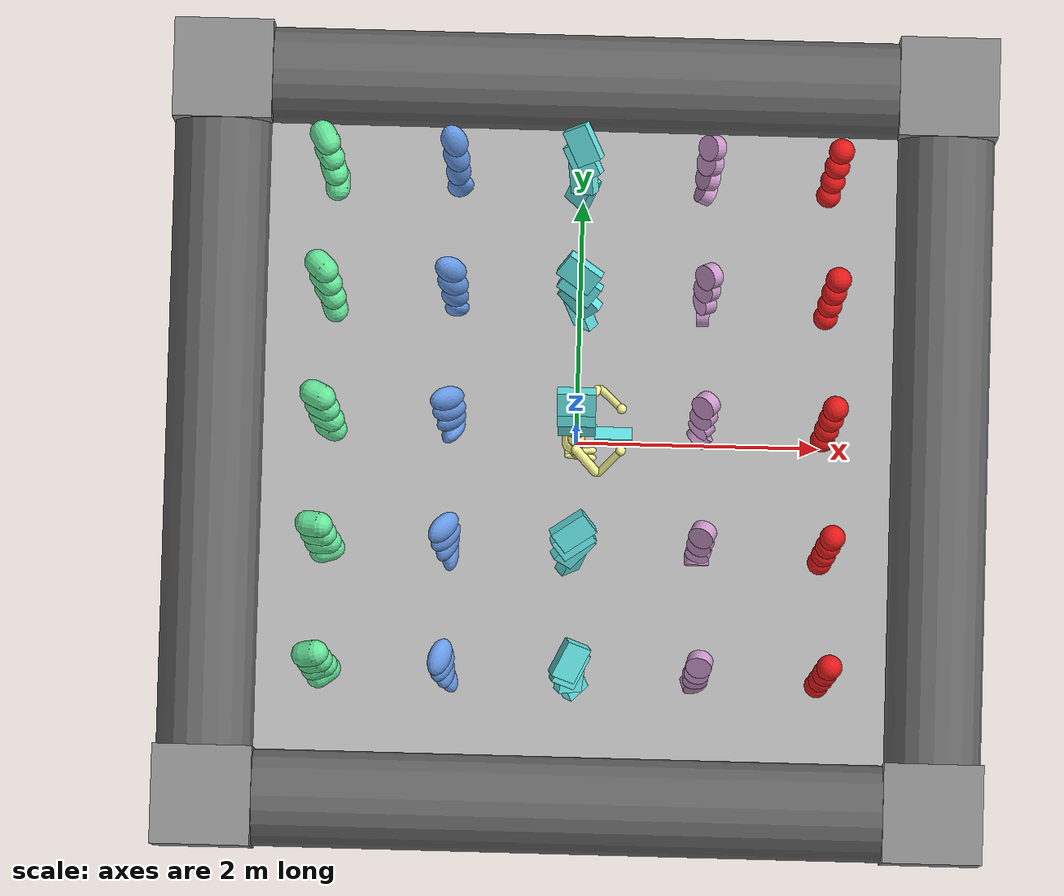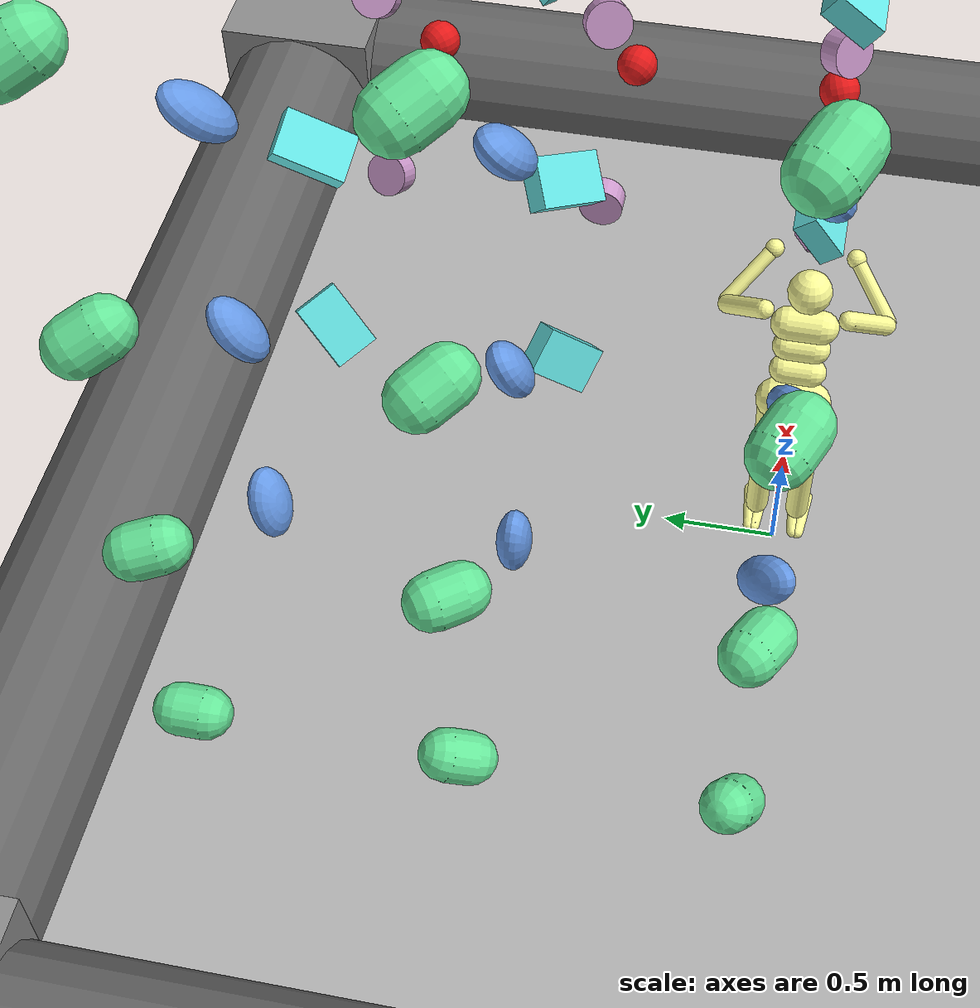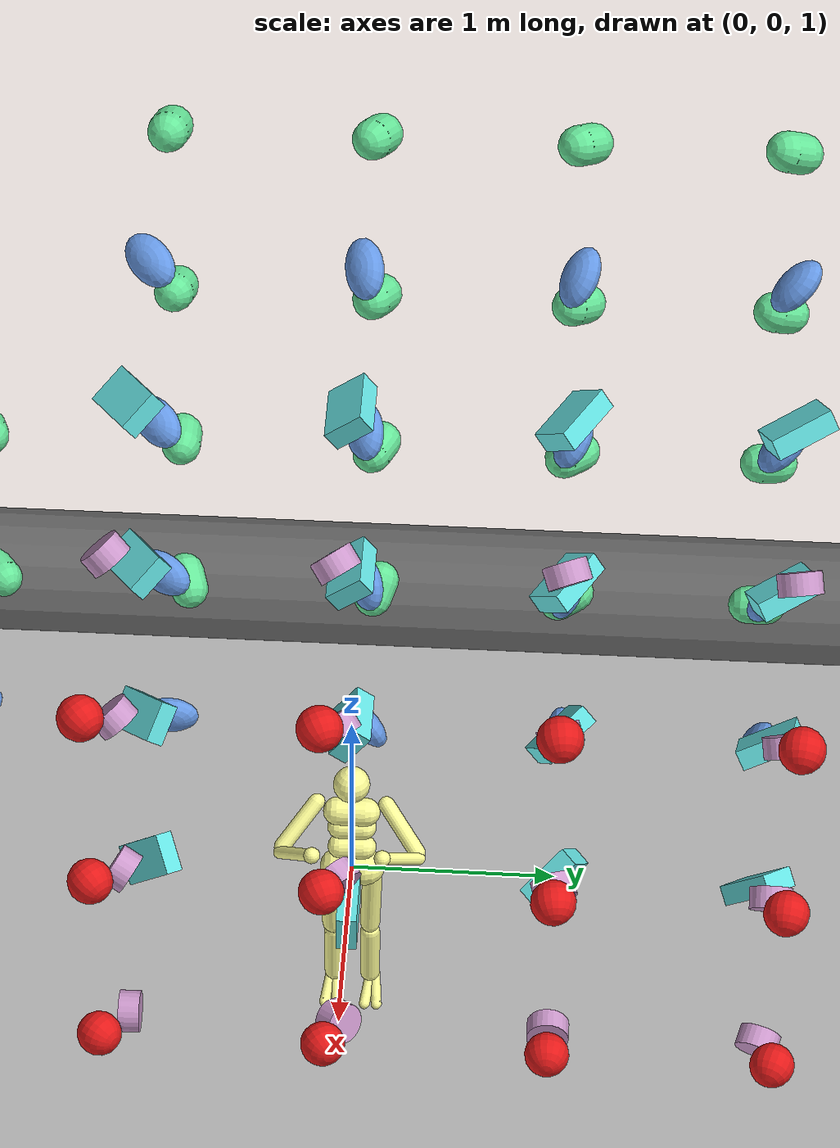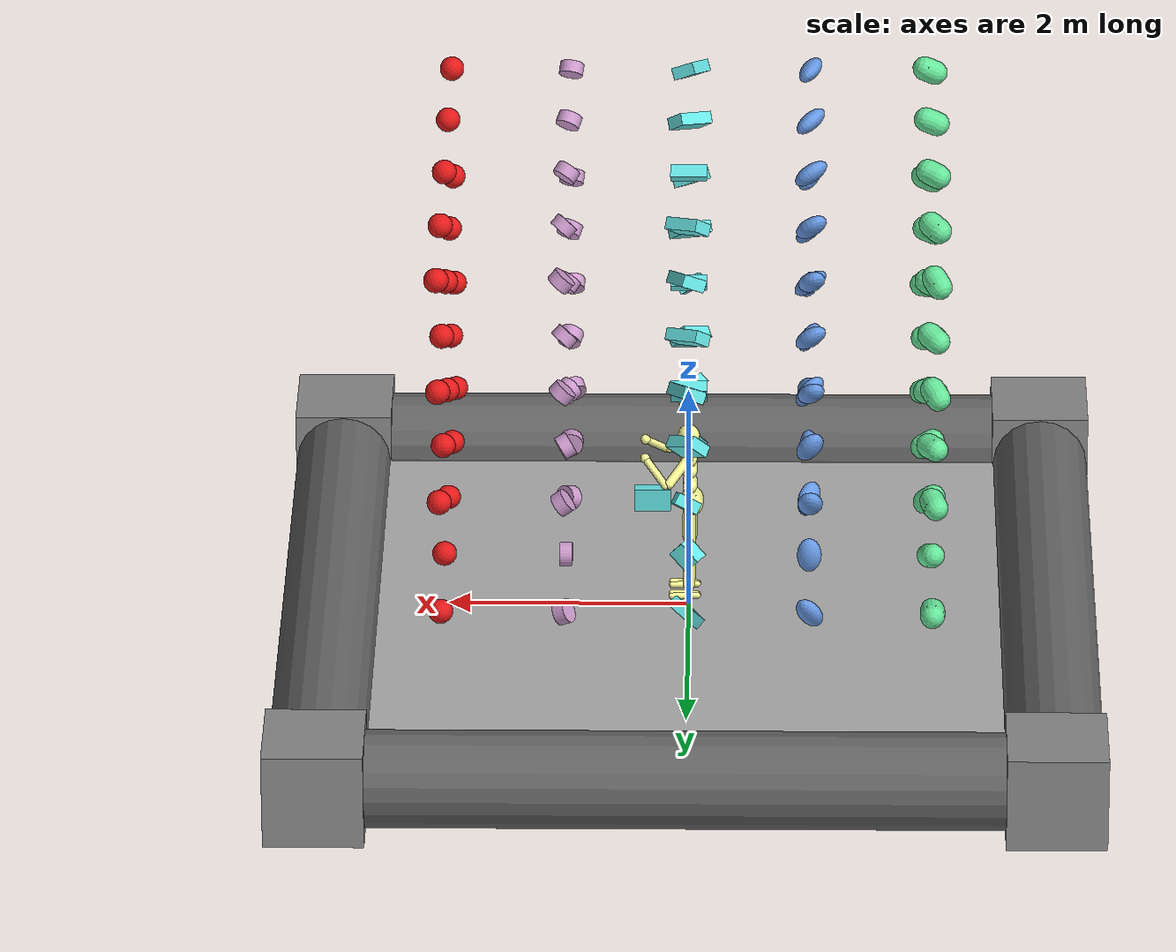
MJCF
<mujoco model="Humanoid and 100 objects">
    <compiler angle="degree"/>

    <option timestep="0.003" iterations="50" solver="Newton" jacobian="sparse" cone="elliptic" tolerance="1e-10"/>

    <size njmax="5000" nconmax="2000" nstack="5000000"/>

    <default>
        <geom solimp=".9 .9 .01"/>

        <default class="object1">
            <geom type="capsule" material="geom" rgba=".4 .9 .6 1" size="0.1 0.05"/>
        </default>

        <default class="object2">
            <geom type="ellipsoid" material="geom" rgba=".4 .6 .9 1" size="0.15 0.1 0.07"/>
        </default>

        <default class="object3">
            <geom type="box" material="geom" rgba=".4 .9 .9 1" size="0.15 0.1 0.05"/>
        </default>

        <default class="object4">
            <geom type="cylinder" material="geom" rgba=".8 .6 .8 1" size="0.1 0.05" condim="4" friction="1 .01 .01"/>
        </default>

        <default class="object5">
            <geom type="sphere" material="geom" rgba=".9 .1 .1 1" size="0.1"/>
        </default>

        <default class="humanoid">
            <geom rgba="1.2 1.2 0.6 1" material="geom"/>
            <joint damping="1" limited="true"/>
        </default>

        <default class="border">
            <geom type="capsule" size="0.4" rgba=".4 .4 .4 1"/>
        </default>

        <default class="borderpost">
            <geom type="box" size="0.41 0.41 0.41" rgba=".55 .55 .55 1"/>
        </default>

 	<default class="juggler">
        	<joint limited='true' damping='1' armature='0'/>
        	<geom contype='1' conaffinity='1' condim='3' rgba='0.8 0.6 .4 1'
        		margin="0.001" solref=".02 1" solimp=".8 .8 .01" material="geom" type='capsule'/>
        	<motor ctrlrange='-1 1'  ctrllimited='true'/>
			<default class="passive">
			 	<geom contype='0' conaffinity='0' rgba='.5 .5 1 1' type='capsule'  size='.005 .5' />
			</default>
		<default class="wall">
			 	<geom contype='1' conaffinity='1' rgba='1 0 0 1' type='capsule'/>
		</default>
    	</default>

    </default>

    <asset>
        <texture type="skybox" builtin="gradient" width="128" height="128" rgb1=".4 .6 .8" rgb2="0 0 0"/>
        <texture name="texgeom" type="cube" builtin="flat" mark="cross" width="128" height="128"
            rgb1="0.6 0.6 0.6" rgb2="0.6 0.6 0.6" markrgb="1 1 1"/>
        <texture name="texplane" type="2d" builtin="checker" rgb1=".4 .4 .4" rgb2=".6 .6 .6"
            width="512" height="512"/>
        <material name='geom' texture="texgeom" texuniform="true"/>
        <material name='MatPlane' reflectance='0.3' texture="texplane" texrepeat="1 1" texuniform="true"/>
    </asset>

    <visual>
        <quality shadowsize="4096" offsamples="8"/>
        <map znear="0.1" force="0.05"/>
    </visual>

    <statistic extent="4"/>

    <worldbody>
        <light directional="true" diffuse=".8 .8 .8" pos="0 0 10" dir="0 0 -10"/>

        <geom pos="0 0 0" type="plane" size="3 3 .5" rgba=".7 .7 .7 1" material="MatPlane"/>

        <geom class="border" fromto="-3 3 0 3 3 0"  />
        <geom class="border" fromto="-3 -3 0 3 -3 0"  />
        <geom class="border" fromto="3 3 0 3 -3 0"  />
        <geom class="border" fromto="-3 3 0 -3 -3 0"  />
        <geom class="borderpost" pos="3 3 0"/>
        <geom class="borderpost" pos="-3 3 0"/>
        <geom class="borderpost" pos="3 -3 0"/>
        <geom class="borderpost" pos="-3 -3 0"/>

        <body name='torso' pos='0 0 1.4' childclass="humanoid">
            <freejoint name="root"/>
            <geom name='torso1' type='capsule' fromto='0 -.07 0 0 .07 0'  size='0.07'/>
            <geom name='head' type='sphere' pos='0 0 .19' size='.09'/>
            <geom name='uwaist' type='capsule' fromto='-.01 -.06 -.12 -.01 .06 -.12' size='0.06'/>
            <body name='lwaist' pos='-.01 0 -0.260' quat='1.000 0 -0.002 0' >
                <geom name='lwaist' type='capsule' fromto='0 -.06 0 0 .06 0'  size='0.06' />
                <joint name='abdomen_z' type='hinge' pos='0 0 0.065' axis='0 0 1' range='-45 45' damping='5' stiffness='20' armature='0.02' />
                <joint name='abdomen_y' type='hinge' pos='0 0 0.065' axis='0 1 0' range='-75 30' damping='5' stiffness='10' armature='0.02' />
                <body name='pelvis' pos='0 0 -0.165' quat='1.000 0 -0.002 0' >
                    <joint name='abdomen_x' type='hinge' pos='0 0 0.1' axis='1 0 0' range='-35 35' damping='5' stiffness='10' armature='0.02' />
                    <geom name='butt' type='capsule' fromto='-.02 -.07 0 -.02 .07 0'  size='0.09' />
                    <body name='right_thigh' pos='0 -0.1 -0.04' >
                        <joint name='right_hip_x' type='hinge' pos='0 0 0' axis='1 0 0' range='-25 5'   damping='5' stiffness='10' armature='0.01' />
                        <joint name='right_hip_z' type='hinge' pos='0 0 0' axis='0 0 1' range='-60 35'  damping='5' stiffness='10' armature='0.01' />
                        <joint name='right_hip_y' type='hinge' pos='0 0 0' axis='0 1 0' range='-120 20' damping='5' stiffness='20' armature='0.01' />
                        <geom name='right_thigh1' type='capsule' fromto='0 0 0 0 0.01 -.34'  size='0.06' />
                        <body name='right_shin' pos='0 0.01 -0.403' >
                            <joint name='right_knee' type='hinge' pos='0 0 .02' axis='0 -1 0' range='-160 -2' stiffness='1' armature='0.0060' />
                            <geom name='right_shin1' type='capsule' fromto='0 0 0 0 0 -.3'   size='0.049' />
                            <body name='right_foot' pos='0 0 -.39' >
                                <joint name='right_ankle_y' type='hinge' pos='0 0 0.08' axis='0 1 0'   range='-50 50' stiffness='4' armature='0.0008' />
                                <joint name='right_ankle_x' type='hinge' pos='0 0 0.04' axis='1 0 0.5' range='-50 50' stiffness='1'  armature='0.0006' />
                                <geom name='right_foot_cap1' type='capsule' fromto='-.07 -0.02 0 0.14 -0.04 0'  size='0.027' />
                                <geom name='right_foot_cap2' type='capsule' fromto='-.07 0 0 0.14  0.02 0'  size='0.027' />
                            </body>
                        </body>
                    </body>
                    <body name='left_thigh' pos='0 0.1 -0.04' >
                        <joint name='left_hip_x' type='hinge' pos='0 0 0' axis='-1 0 0' range='-25 5'  damping='5' stiffness='10' armature='0.01' />
                        <joint name='left_hip_z' type='hinge' pos='0 0 0' axis='0 0 -1' range='-60 35' damping='5' stiffness='10' armature='0.01' />
                        <joint name='left_hip_y' type='hinge' pos='0 0 0' axis='0 1 0' range='-120 20' damping='5' stiffness='20' armature='0.01' />
                        <geom name='left_thigh1' type='capsule' fromto='0 0 0 0 -0.01 -.34'  size='0.049' />
                        <body name='left_shin' pos='0 -0.01 -0.403' >
                            <joint name='left_knee' type='hinge' pos='0 0 .02' axis='0 -1 0' range='-160 -2' stiffness='1' armature='0.0060' />
                            <geom name='left_shin1' type='capsule' fromto='0 0 0 0 0 -.3'   size='0.049' />
                            <body name='left_foot' pos='0 0 -.39' >
                                <joint name='left_ankle_y' type='hinge' pos='0 0 0.08' axis='0 1 0'   range='-50 50'  stiffness='4' armature='0.0008' />
                                <joint name='left_ankle_x' type='hinge' pos='0 0 0.04' axis='1 0 0.5' range='-50 50'  stiffness='1'  armature='0.0006' />
                                <geom name='left_foot_cap1' type='capsule' fromto='-.07 0.02 0 0.14 0.04 0'  size='0.027' />
                                <geom name='left_foot_cap2' type='capsule' fromto='-.07 0 0 0.14  -0.02 0'  size='0.027' />
                            </body>
                        </body>
                    </body>
                </body>
            </body>
            <body name='right_upper_arm' pos='0 -0.17 0.06' >
                <joint name='right_shoulder1' type='hinge' pos='0 0 0' axis='2 1 1'  range='-85 60' stiffness='1' armature='0.0068' />
                <joint name='right_shoulder2' type='hinge' pos='0 0 0' axis='0 -1 1' range='-85 60' stiffness='1'  armature='0.0051' />
                <geom name='right_uarm1' type='capsule' fromto='0 0 0 .16 -.16 -.16'  size='0.04 0.16' />
                <body name='right_lower_arm' pos='.18 -.18 -.18' >
                    <joint name='right_elbow' type='hinge' pos='0 0 0' axis='0 -1 1' range='-90 50'  stiffness='0' armature='0.0028' />
                    <geom name='right_larm' type='capsule' fromto='0.01 0.01 0.01 .17 .17 .17'  size='0.031' />
                    <geom name='right_hand' type='sphere' pos='.18 .18 .18'  size='0.04'/>
                </body>
            </body>
            <body name='left_upper_arm' pos='0 0.17 0.06' >
                <joint name='left_shoulder1' type='hinge' pos='0 0 0' axis='2 -1 1' range='-60 85' stiffness='1' armature='0.0068' />
                <joint name='left_shoulder2' type='hinge' pos='0 0 0' axis='0 1 1' range='-60 85'  stiffness='1' armature='0.0051' />
                <geom name='left_uarm1' type='capsule' fromto='0 0 0 .16 .16 -.16'  size='0.04 0.16' />
                <body name='left_lower_arm' pos='.18 .18 -.18' >
                    <joint name='left_elbow' type='hinge' pos='0 0 0' axis='0 -1 -1' range='-90 50' stiffness='0' armature='0.0028' />
                    <geom name='left_larm' type='capsule' fromto='0.01 -0.01 0.01 .17 -.17 .17'  size='0.031' />
                    <geom name='left_hand' type='sphere' pos='.18 -.18 .18'  size='0.04'/>
                </body>
            </body>
        </body>

        <body pos="-2 -2 1" quat="-0.632456 -0.632456 0.316228 0.316228">
            <freejoint/>
            <geom class="object1"/>
        </body>
        <body pos="-2 -2 2" quat="-0.5547 -0.5547 0.5547 0.27735">
            <freejoint/>
            <geom class="object1"/>
        </body>
        <body pos="-2 -2 3" quat="-0.471405 -0.471405 0.707107 0.235702">
            <freejoint/>
            <geom class="object1"/>
        </body>
        <body pos="-2 -2 4" quat="-0.471405 -0.471405 0.707107 0.235702">
            <freejoint/>
            <geom class="object1"/>
        </body>

        <body pos="-2 -1 1" quat="-0.755929 -0.377964 0.377964 0.377964">
            <freejoint/>
            <geom class="object1"/>
        </body>
        <body pos="-2 -1 2" quat="-0.632456 -0.316228 0.632456 0.316228">
            <freejoint/>
            <geom class="object1"/>
        </body>
        <body pos="-2 -1 3" quat="-0.516398 -0.258199 0.774597 0.258199">
            <freejoint/>
            <geom class="object1"/>
        </body>
        <body pos="-2 -1 4" quat="-0.516398 -0.258199 0.774597 0.258199">
            <freejoint/>
            <geom class="object1"/>
        </body>

        <body pos="-2 0 1" quat="-0.816497 0 0.408248 0.408248">
            <freejoint/>
            <geom class="object1"/>
        </body>
        <body pos="-2 0 2" quat="-0.666667 0 0.666667 0.333333">
            <freejoint/>
            <geom class="object1"/>
        </body>
        <body pos="-2 0 3" quat="-0.534522 0 0.801784 0.267261">
            <freejoint/>
            <geom class="object1"/>
        </body>
        <body pos="-2 0 4" quat="-0.534522 0 0.801784 0.267261">
            <freejoint/>
            <geom class="object1"/>
        </body>

        <body pos="-2 1 1" quat="-0.755929 0.377964 0.377964 0.377964">
            <freejoint/>
            <geom class="object1"/>
        </body>
        <body pos="-2 1 2" quat="-0.632456 0.316228 0.632456 0.316228">
            <freejoint/>
            <geom class="object1"/>
        </body>
        <body pos="-2 1 3" quat="-0.516398 0.258199 0.774597 0.258199">
            <freejoint/>
            <geom class="object1"/>
        </body>
        <body pos="-2 1 4" quat="-0.516398 0.258199 0.774597 0.258199">
            <freejoint/>
            <geom class="object1"/>
        </body>

        <body pos="-2 2 1" quat="-0.632456 0.632456 0.316228 0.316228">
            <freejoint/>
            <geom class="object1"/>
        </body>
        <body pos="-2 2 2" quat="-0.5547 0.5547 0.5547 0.27735">
            <freejoint/>
            <geom class="object1"/>
        </body>
        <body pos="-2 2 3" quat="-0.471405 0.471405 0.707107 0.235702">
            <freejoint/>
            <geom class="object1"/>
        </body>
        <body pos="-2 2 4" quat="-0.471405 0.471405 0.707107 0.235702">
            <freejoint/>
            <geom class="object1"/>
        </body>

        <body pos="-1 -2 1" quat="-0.377964 -0.755929 0.377964 0.377964">
            <freejoint/>
            <geom class="object2"/>
        </body>
        <body pos="-1 -2 2" quat="-0.316228 -0.632456 0.632456 0.316228">
            <freejoint/>
            <geom class="object2"/>
        </body>
        <body pos="-1 -2 3" quat="-0.258199 -0.516398 0.774597 0.258199">
            <freejoint/>
            <geom class="object2"/>
        </body>
        <body pos="-1 -2 4" quat="-0.258199 -0.516398 0.774597 0.258199">
            <freejoint/>
            <geom class="object2"/>
        </body>

        <body pos="-1 -1 1" quat="-0.5 -0.5 0.5 0.5">
            <freejoint/>
            <geom class="object2"/>
        </body>
        <body pos="-1 -1 2" quat="-0.377964 -0.377964 0.755929 0.377964">
            <freejoint/>
            <geom class="object2"/>
        </body>
        <body pos="-1 -1 3" quat="-0.288675 -0.288675 0.866025 0.288675">
            <freejoint/>
            <geom class="object2"/>
        </body>
        <body pos="-1 -1 4" quat="-0.288675 -0.288675 0.866025 0.288675">
            <freejoint/>
            <geom class="object2"/>
        </body>

        <body pos="-1 0 1" quat="-0.57735 0 0.57735 0.57735">
            <freejoint/>
            <geom class="object2"/>
        </body>
        <body pos="-1 0 2" quat="-0.408248 0 0.816497 0.408248">
            <freejoint/>
            <geom class="object2"/>
        </body>
        <body pos="-1 0 3" quat="-0.301511 0 0.904534 0.301511">
            <freejoint/>
            <geom class="object2"/>
        </body>
        <body pos="-1 0 4" quat="-0.301511 0 0.904534 0.301511">
            <freejoint/>
            <geom class="object2"/>
        </body>

        <body pos="-1 1 1" quat="-0.5 0.5 0.5 0.5">
            <freejoint/>
            <geom class="object2"/>
        </body>
        <body pos="-1 1 2" quat="-0.377964 0.377964 0.755929 0.377964">
            <freejoint/>
            <geom class="object2"/>
        </body>
        <body pos="-1 1 3" quat="-0.288675 0.288675 0.866025 0.288675">
            <freejoint/>
            <geom class="object2"/>
        </body>
        <body pos="-1 1 4" quat="-0.288675 0.288675 0.866025 0.288675">
            <freejoint/>
            <geom class="object2"/>
        </body>

        <body pos="-1 2 1" quat="-0.377964 0.755929 0.377964 0.377964">
            <freejoint/>
            <geom class="object2"/>
        </body>
        <body pos="-1 2 2" quat="-0.316228 0.632456 0.632456 0.316228">
            <freejoint/>
            <geom class="object2"/>
        </body>
        <body pos="-1 2 3" quat="-0.258199 0.516398 0.774597 0.258199">
            <freejoint/>
            <geom class="object2"/>
        </body>
        <body pos="-1 2 4" quat="-0.258199 0.516398 0.774597 0.258199">
            <freejoint/>
            <geom class="object2"/>
        </body>

        <body pos="0 -2 1" quat="0 -0.816497 0.408248 0.408248">
            <freejoint/>
            <geom class="object3"/>
        </body>
        <body pos="0 -2 2" quat="0 -0.666667 0.666667 0.333333">
            <freejoint/>
            <geom class="object3"/>
        </body>
        <body pos="0 -2 3" quat="0 -0.534522 0.801784 0.267261">
            <freejoint/>
            <geom class="object3"/>
        </body>
        <body pos="0 -2 4" quat="0 -0.534522 0.801784 0.267261">
            <freejoint/>
            <geom class="object3"/>
        </body>

        <body pos="0 -1 1" quat="0 -0.57735 0.57735 0.57735">
            <freejoint/>
            <geom class="object3"/>
        </body>
        <body pos="0 -1 2" quat="0 -0.408248 0.816497 0.408248">
            <freejoint/>
            <geom class="object3"/>
        </body>
        <body pos="0 -1 3" quat="0 -0.301511 0.904534 0.301511">
            <freejoint/>
            <geom class="object3"/>
        </body>
        <body pos="0 -1 4" quat="0 -0.301511 0.904534 0.301511">
            <freejoint/>
            <geom class="object3"/>
        </body>

        <body pos="0.3 0 1" quat="0 0 0.707107 0.707107">
            <freejoint/>
            <geom class="object3"/>
        </body>
        <body pos="0 0 2" quat="0 0 0.894427 0.447214">
            <freejoint/>
            <geom class="object3"/>
        </body>
        <body pos="0 0 3" quat="0 0 0.948683 0.316228">
            <freejoint/>
            <geom class="object3"/>
        </body>
        <body pos="0 0 4" quat="0 0 0.948683 0.316228">
            <freejoint/>
            <geom class="object3"/>
        </body>

        <body pos="0 1 1" quat="0 0.57735 0.57735 0.57735">
            <freejoint/>
            <geom class="object3"/>
        </body>
        <body pos="0 1 2" quat="0 0.408248 0.816497 0.408248">
            <freejoint/>
            <geom class="object3"/>
        </body>
        <body pos="0 1 3" quat="0 0.301511 0.904534 0.301511">
            <freejoint/>
            <geom class="object3"/>
        </body>
        <body pos="0 1 4" quat="0 0.301511 0.904534 0.301511">
            <freejoint/>
            <geom class="object3"/>
        </body>

        <body pos="0 2 1" quat="0 0.816497 0.408248 0.408248">
            <freejoint/>
            <geom class="object3"/>
        </body>
        <body pos="0 2 2" quat="0 0.666667 0.666667 0.333333">
            <freejoint/>
            <geom class="object3"/>
        </body>
        <body pos="0 2 3" quat="0 0.534522 0.801784 0.267261">
            <freejoint/>
            <geom class="object3"/>
        </body>
        <body pos="0 2 4" quat="0 0.534522 0.801784 0.267261">
            <freejoint/>
            <geom class="object3"/>
        </body>

        <body pos="1 -2 1" quat="0.377964 -0.755929 0.377964 0.377964">
            <freejoint/>
            <geom class="object4"/>
        </body>
        <body pos="1 -2 2" quat="0.316228 -0.632456 0.632456 0.316228">
            <freejoint/>
            <geom class="object4"/>
        </body>
        <body pos="1 -2 3" quat="0.258199 -0.516398 0.774597 0.258199">
            <freejoint/>
            <geom class="object4"/>
        </body>
        <body pos="1 -2 4" quat="0.258199 -0.516398 0.774597 0.258199">
            <freejoint/>
            <geom class="object4"/>
        </body>

        <body pos="1 -1 1" quat="0.5 -0.5 0.5 0.5">
            <freejoint/>
            <geom class="object4"/>
        </body>
        <body pos="1 -1 2" quat="0.377964 -0.377964 0.755929 0.377964">
            <freejoint/>
            <geom class="object4"/>
        </body>
        <body pos="1 -1 3" quat="0.288675 -0.288675 0.866025 0.288675">
            <freejoint/>
            <geom class="object4"/>
        </body>
        <body pos="1 -1 4" quat="0.288675 -0.288675 0.866025 0.288675">
            <freejoint/>
            <geom class="object4"/>
        </body>

        <body pos="1 0 1" quat="0.57735 0 0.57735 0.57735">
            <freejoint/>
            <geom class="object4"/>
        </body>
        <body pos="1 0 2" quat="0.408248 0 0.816497 0.408248">
            <freejoint/>
            <geom class="object4"/>
        </body>
        <body pos="1 0 3" quat="0.301511 0 0.904534 0.301511">
            <freejoint/>
            <geom class="object4"/>
        </body>
        <body pos="1 0 4" quat="0.301511 0 0.904534 0.301511">
            <freejoint/>
            <geom class="object4"/>
        </body>

        <body pos="1 1 1" quat="0.5 0.5 0.5 0.5">
            <freejoint/>
            <geom class="object4"/>
        </body>
        <body pos="1 1 2" quat="0.377964 0.377964 0.755929 0.377964">
            <freejoint/>
            <geom class="object4"/>
        </body>
        <body pos="1 1 3" quat="0.288675 0.288675 0.866025 0.288675">
            <freejoint/>
            <geom class="object4"/>
        </body>
        <body pos="1 1 4" quat="0.288675 0.288675 0.866025 0.288675">
            <freejoint/>
            <geom class="object4"/>
        </body>

        <body pos="1 2 1" quat="0.377964 0.755929 0.377964 0.377964">
            <freejoint/>
            <geom class="object4"/>
        </body>
        <body pos="1 2 2" quat="0.316228 0.632456 0.632456 0.316228">
            <freejoint/>
            <geom class="object4"/>
        </body>
        <body pos="1 2 3" quat="0.258199 0.516398 0.774597 0.258199">
            <freejoint/>
            <geom class="object4"/>
        </body>
        <body pos="1 2 4" quat="0.258199 0.516398 0.774597 0.258199">
            <freejoint/>
            <geom class="object4"/>
        </body>

        <body pos="2 -2 1" quat="0.632456 -0.632456 0.316228 0.316228">
            <freejoint/>
            <geom class="object5"/>
        </body>
        <body pos="2 -2 2" quat="0.5547 -0.5547 0.5547 0.27735">
            <freejoint/>
            <geom class="object5"/>
        </body>
        <body pos="2 -2 3" quat="0.471405 -0.471405 0.707107 0.235702">
            <freejoint/>
            <geom class="object5"/>
        </body>
        <body pos="2 -2 4" quat="0.471405 -0.471405 0.707107 0.235702">
            <freejoint/>
            <geom class="object5"/>
        </body>

        <body pos="2 -1 1" quat="0.755929 -0.377964 0.377964 0.377964">
            <freejoint/>
            <geom class="object5"/>
        </body>
        <body pos="2 -1 2" quat="0.632456 -0.316228 0.632456 0.316228">
            <freejoint/>
            <geom class="object5"/>
        </body>
        <body pos="2 -1 3" quat="0.516398 -0.258199 0.774597 0.258199">
            <freejoint/>
            <geom class="object5"/>
        </body>
        <body pos="2 -1 4" quat="0.516398 -0.258199 0.774597 0.258199">
            <freejoint/>
            <geom class="object5"/>
        </body>

        <body pos="2 0 1" quat="0.816497 0 0.408248 0.408248">
            <freejoint/>
            <geom class="object5"/>
        </body>
        <body pos="2 0 2" quat="0.666667 0 0.666667 0.333333">
            <freejoint/>
            <geom class="object5"/>
        </body>
        <body pos="2 0 3" quat="0.534522 0 0.801784 0.267261">
            <freejoint/>
            <geom class="object5"/>
        </body>
        <body pos="2 0 4" quat="0.534522 0 0.801784 0.267261">
            <freejoint/>
            <geom class="object5"/>
        </body>

        <body pos="2 1 1" quat="0.755929 0.377964 0.377964 0.377964">
            <freejoint/>
            <geom class="object5"/>
        </body>
        <body pos="2 1 2" quat="0.632456 0.316228 0.632456 0.316228">
            <freejoint/>
            <geom class="object5"/>
        </body>
        <body pos="2 1 3" quat="0.516398 0.258199 0.774597 0.258199">
            <freejoint/>
            <geom class="object5"/>
        </body>
        <body pos="2 1 4" quat="0.516398 0.258199 0.774597 0.258199">
            <freejoint/>
            <geom class="object5"/>
        </body>

        <body pos="2 2 1" quat="0.632456 0.632456 0.316228 0.316228">
            <freejoint/>
            <geom class="object5"/>
        </body>
        <body pos="2 2 2" quat="0.5547 0.5547 0.5547 0.27735">
            <freejoint/>
            <geom class="object5"/>
        </body>
        <body pos="2 2 3" quat="0.471405 0.471405 0.707107 0.235702">
            <freejoint/>
            <geom class="object5"/>
        </body>
        <body pos="2 2 4" quat="0.471405 0.471405 0.707107 0.235702">
            <freejoint/>
            <geom class="object5"/>
        </body>

    </worldbody>
</mujoco>
